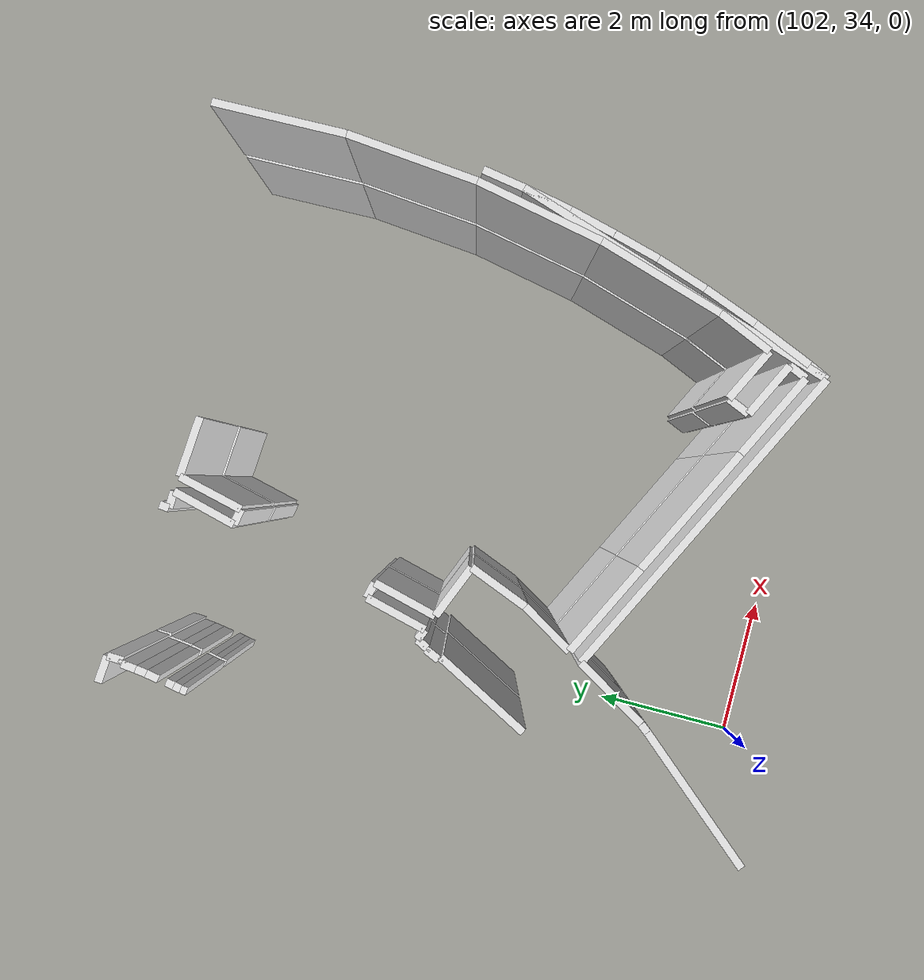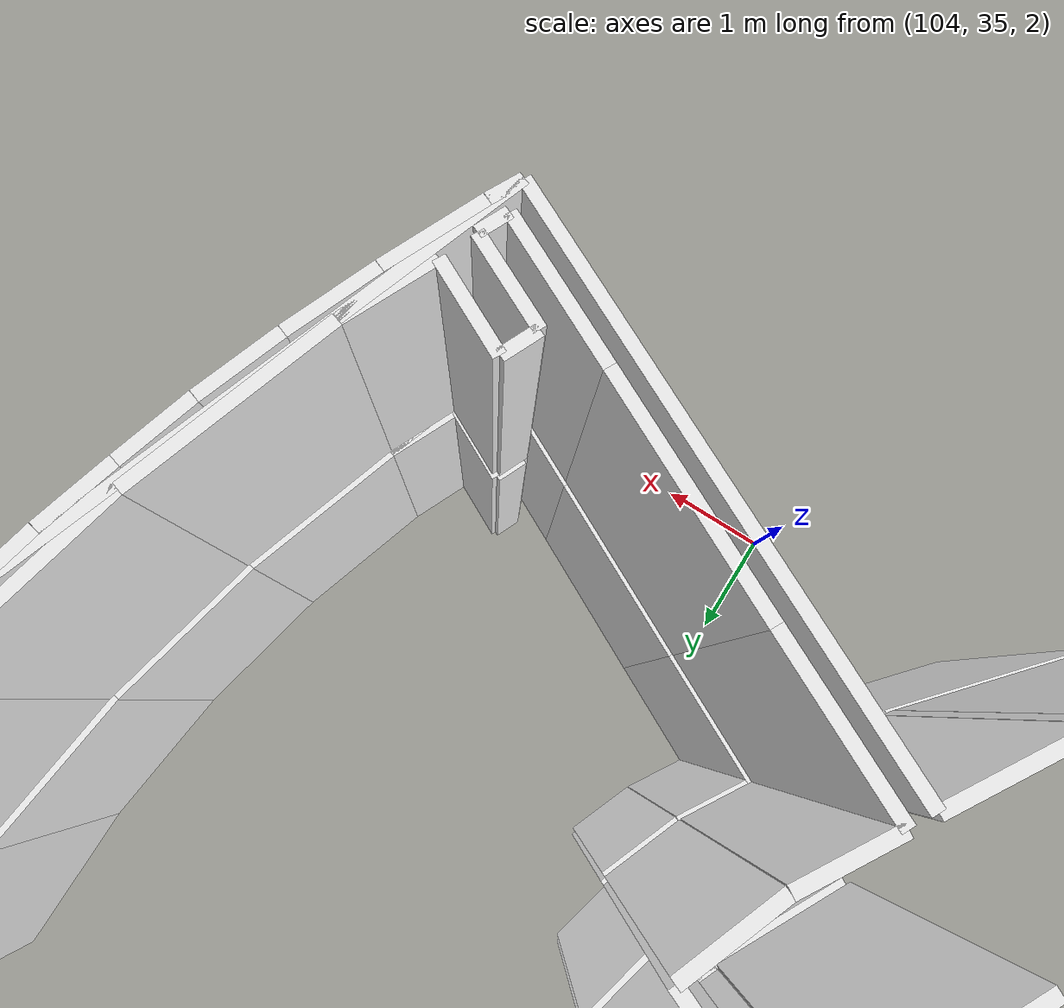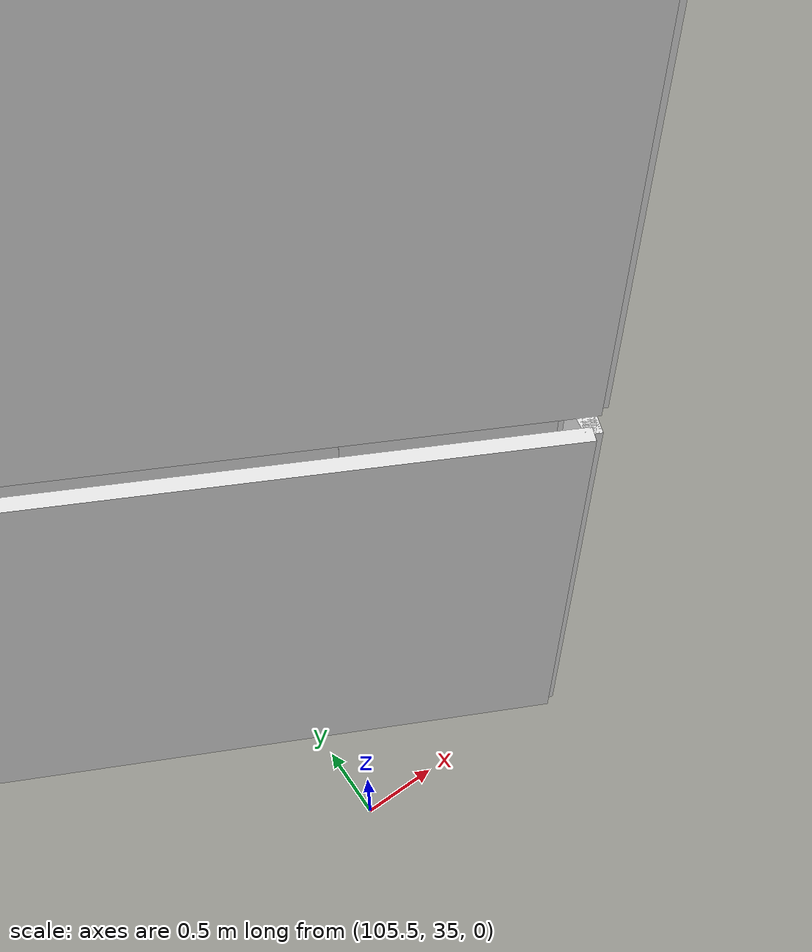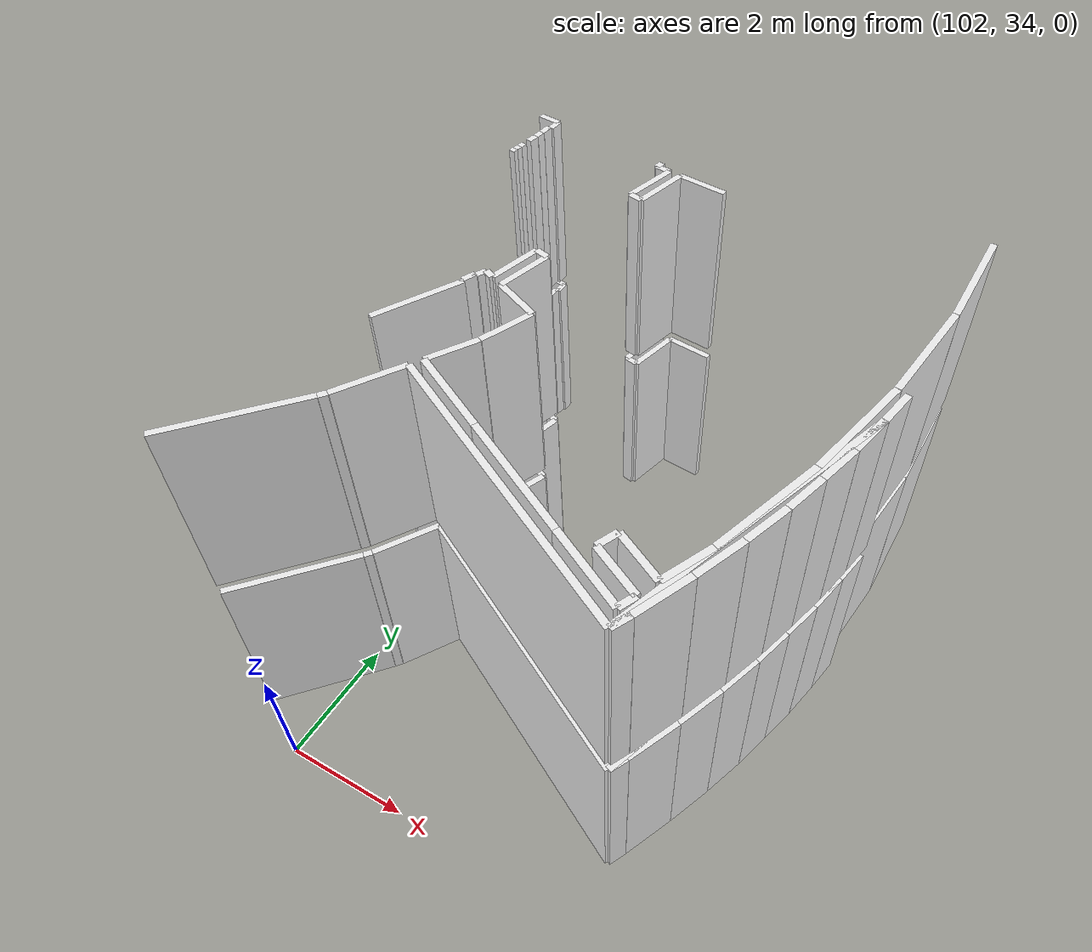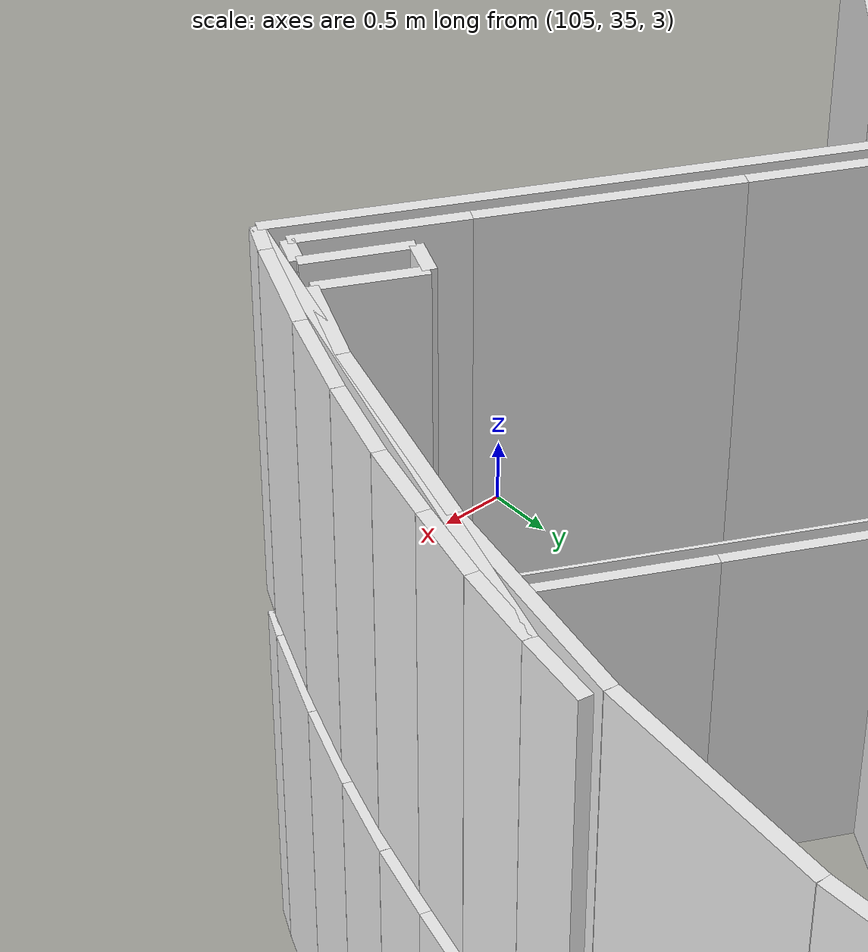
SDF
<sdf version="1.6">
 <world name="default">
  <model name="wall_101.5_41.6_0.0_link">
   <static>true</static>
   <pose>101.46499999999651 41.56999999983236 1.5 0 0 1.4464413329645371</pose>
   <link name="link">
    <visual name="visual">
     <geometry><box><size>0.08062257755085135 0.1 3</size></box></geometry>
     <material>
      <script><uri>file://media/materials/scripts/gazebo.material</uri><name>Gazebo/White</name></script>
     </material>
    </visual>
   </link>
  </model>
  <model name="wall_101.5_41.7_0.0_link">
   <static>true</static>
   <pose>101.47999999998137 41.65500000002794 1.5 0 0 1.3521273814687915</pose>
   <link name="link">
    <visual name="visual">
     <geometry><box><size>0.09219544488607884 0.1 3</size></box></geometry>
     <material>
      <script><uri>file://media/materials/scripts/gazebo.material</uri><name>Gazebo/White</name></script>
     </material>
    </visual>
   </link>
  </model>
  <model name="wall_101.5_41.8_0.0_link">
   <static>true</static>
   <pose>101.5 41.75 1.5 0 0 1.3734007660495133</pose>
   <link name="link">
    <visual name="visual">
     <geometry><box><size>0.10198038991021388 0.1 3</size></box></geometry>
     <material>
      <script><uri>file://media/materials/scripts/gazebo.material</uri><name>Gazebo/White</name></script>
     </material>
    </visual>
   </link>
  </model>
  <model name="wall_101.5_42.0_0.0_link">
   <static>true</static>
   <pose>101.53500000000349 41.97999999998137 1.5 0 0 1.3854483771506443</pose>
   <link name="link">
    <visual name="visual">
     <geometry><box><size>0.16278820610187839 0.1 3</size></box></geometry>
     <material>
      <script><uri>file://media/materials/scripts/gazebo.material</uri><name>Gazebo/White</name></script>
     </material>
    </visual>
   </link>
  </model>
  <model name="wall_101.6_42.1_0.0_link">
   <static>true</static>
   <pose>101.55999999999767 42.13000000012107 1.5 0 0 1.4288992721907328</pose>
   <link name="link">
    <visual name="visual">
     <geometry><box><size>0.1414213563690184 0.1 3</size></box></geometry>
     <material>
      <script><uri>file://media/materials/scripts/gazebo.material</uri><name>Gazebo/White</name></script>
     </material>
    </visual>
   </link>
  </model>
  <model name="wall_101.6_42.3_0.0_link">
   <static>true</static>
   <pose>101.5800000000163 42.29000000003725 1.5 0 0 1.4601391053370611</pose>
   <link name="link">
    <visual name="visual">
     <geometry><box><size>0.18110770246860486 0.1 3</size></box></geometry>
     <material>
      <script><uri>file://media/materials/scripts/gazebo.material</uri><name>Gazebo/White</name></script>
     </material>
    </visual>
   </link>
  </model>
  <model name="wall_101.6_42.4_0.0_link">
   <static>true</static>
   <pose>101.61000000001513 42.375 1.5 0 0 -0.24497865799089408</pose>
   <link name="link">
    <visual name="visual">
     <geometry><box><size>0.04123105618163657 0.1 3</size></box></geometry>
     <material>
      <script><uri>file://media/materials/scripts/gazebo.material</uri><name>Gazebo/White</name></script>
     </material>
    </visual>
   </link>
  </model>
  <model name="wall_101.6_42.5_0.0_link">
   <static>true</static>
   <pose>101.63500000000931 42.46999999997206 1.5 0 0 1.520837930956829</pose>
   <link name="link">
    <visual name="visual">
     <geometry><box><size>0.20024984366642476 0.1 3</size></box></geometry>
     <material>
      <script><uri>file://media/materials/scripts/gazebo.material</uri><name>Gazebo/White</name></script>
     </material>
    </visual>
   </link>
  </model>
  <model name="wall_103.6_42.4_0.0_link">
   <static>true</static>
   <pose>103.56500000000233 42.35000000009313 1.5 0 0 -1.6539375586833378</pose>
   <link name="link">
    <visual name="visual">
     <geometry><box><size>0.12041594590006904 0.1 3</size></box></geometry>
     <material>
      <script><uri>file://media/materials/scripts/gazebo.material</uri><name>Gazebo/White</name></script>
     </material>
    </visual>
   </link>
  </model>
  <model name="wall_103.7_42.3_0.0_link">
   <static>true</static>
   <pose>103.66500000000815 42.28499999991618 1.5 0 0 -0.0475831044226998</pose>
   <link name="link">
    <visual name="visual">
     <geometry><box><size>0.21023796044873502 0.1 3</size></box></geometry>
     <material>
      <script><uri>file://media/materials/scripts/gazebo.material</uri><name>Gazebo/White</name></script>
     </material>
    </visual>
   </link>
  </model>
  <model name="wall_103.7_41.9_0.0_link">
   <static>true</static>
   <pose>103.66500000000815 41.87999999988824 1.5 0 0 -1.8275046573099654</pose>
   <link name="link">
    <visual name="visual">
     <geometry><box><size>0.8271033790952481 0.1 3</size></box></geometry>
     <material>
      <script><uri>file://media/materials/scripts/gazebo.material</uri><name>Gazebo/White</name></script>
     </material>
    </visual>
   </link>
  </model>
  <model name="wall_103.0_39.3_0.0_link">
   <static>true</static>
   <pose>103.0 39.31000000005588 1.5 0 0 -1.821799013301479</pose>
   <link name="link">
    <visual name="visual">
     <geometry><box><size>0.8052328858089288 0.1 3</size></box></geometry>
     <material>
      <script><uri>file://media/materials/scripts/gazebo.material</uri><name>Gazebo/White</name></script>
     </material>
    </visual>
   </link>
  </model>
  <model name="wall_102.8_38.9_0.0_link">
   <static>true</static>
   <pose>102.8300000000163 38.949999999953434 1.5 0 0 2.736700867003636</pose>
   <link name="link">
    <visual name="visual">
     <geometry><box><size>0.15231546215213043 0.1 3</size></box></geometry>
     <material>
      <script><uri>file://media/materials/scripts/gazebo.material</uri><name>Gazebo/White</name></script>
     </material>
    </visual>
   </link>
  </model>
  <model name="wall_102.7_38.9_0.0_link">
   <static>true</static>
   <pose>102.72500000000582 38.90999999991618 1.5 0 0 -2.0344439354630874</pose>
   <link name="link">
    <visual name="visual">
     <geometry><box><size>0.15652475854472905 0.1 3</size></box></geometry>
     <material>
      <script><uri>file://media/materials/scripts/gazebo.material</uri><name>Gazebo/White</name></script>
     </material>
    </visual>
   </link>
  </model>
  <model name="wall_102.7_38.8_0.0_link">
   <static>true</static>
   <pose>102.67999999999302 38.84499999997206 1.5 0 0 2.677945035275761</pose>
   <link name="link">
    <visual name="visual">
     <geometry><box><size>0.022360679899947934 0.1 3</size></box></geometry>
     <material>
      <script><uri>file://media/materials/scripts/gazebo.material</uri><name>Gazebo/White</name></script>
     </material>
    </visual>
   </link>
  </model>
  <model name="wall_102.6_38.8_0.0_link">
   <static>true</static>
   <pose>102.63000000000466 38.76000000000931 1.5 0 0 -1.9890206558340546</pose>
   <link name="link">
    <visual name="visual">
     <geometry><box><size>0.19697715617209063 0.1 3</size></box></geometry>
     <material>
      <script><uri>file://media/materials/scripts/gazebo.material</uri><name>Gazebo/White</name></script>
     </material>
    </visual>
   </link>
  </model>
  <model name="wall_101.5_42.6_0.0_link">
   <static>true</static>
   <pose>101.47000000000116 42.58499999996275 1.5 0 0 3.053585279307601</pose>
   <link name="link">
    <visual name="visual">
     <geometry><box><size>0.3413209633659526 0.1 3</size></box></geometry>
     <material>
      <script><uri>file://media/materials/scripts/gazebo.material</uri><name>Gazebo/White</name></script>
     </material>
    </visual>
   </link>
  </model>
  <model name="wall_102.6_38.7_0.0_link">
   <static>true</static>
   <pose>102.60500000001048 38.65999999991618 1.5 0 0 -0.5880026044430701</pose>
   <link name="link">
    <visual name="visual">
     <geometry><box><size>0.03605551273978751 0.1 3</size></box></geometry>
     <material>
      <script><uri>file://media/materials/scripts/gazebo.material</uri><name>Gazebo/White</name></script>
     </material>
    </visual>
   </link>
  </model>
  <model name="wall_102.3_38.1_0.0_link">
   <static>true</static>
   <pose>102.30499999999302 38.05499999993481 1.5 0 0 -2.0576955586286396</pose>
   <link name="link">
    <visual name="visual">
     <geometry><box><size>1.3464768842697874 0.1 3</size></box></geometry>
     <material>
      <script><uri>file://media/materials/scripts/gazebo.material</uri><name>Gazebo/White</name></script>
     </material>
    </visual>
   </link>
  </model>
  <model name="wall_108.5_42.2_0.0_link">
   <static>true</static>
   <pose>108.46499999999651 42.169999999925494 1.5 0 0 -1.5529410816701883</pose>
   <link name="link">
    <visual name="visual">
     <geometry><box><size>1.6802678354943374 0.1 3</size></box></geometry>
     <material>
      <script><uri>file://media/materials/scripts/gazebo.material</uri><name>Gazebo/White</name></script>
     </material>
    </visual>
   </link>
  </model>
  <model name="wall_108.4_40.5_0.0_link">
   <static>true</static>
   <pose>108.39999999999418 40.48999999999069 1.5 0 0 -1.6657480331131271</pose>
   <link name="link">
    <visual name="visual">
     <geometry><box><size>1.6876018489427735 0.1 3</size></box></geometry>
     <material>
      <script><uri>file://media/materials/scripts/gazebo.material</uri><name>Gazebo/White</name></script>
     </material>
    </visual>
   </link>
  </model>
  <model name="wall_108.2_38.8_0.0_link">
   <static>true</static>
   <pose>108.15499999999884 38.829999999841675 1.5 0 0 -1.7693642190444387</pose>
   <link name="link">
    <visual name="visual">
     <geometry><box><size>1.672871782426382 0.1 3</size></box></geometry>
     <material>
      <script><uri>file://media/materials/scripts/gazebo.material</uri><name>Gazebo/White</name></script>
     </material>
    </visual>
   </link>
  </model>
  <model name="wall_107.7_37.2_0.0_link">
   <static>true</static>
   <pose>107.74499999999534 37.204999999841675 1.5 0 0 -1.8662371639558804</pose>
   <link name="link">
    <visual name="visual">
     <geometry><box><size>1.6829141390965354 0.1 3</size></box></geometry>
     <material>
      <script><uri>file://media/materials/scripts/gazebo.material</uri><name>Gazebo/White</name></script>
     </material>
    </visual>
   </link>
  </model>
  <model name="wall_107.4_36.1_0.0_link">
   <static>true</static>
   <pose>107.35000000000582 36.05499999993481 1.5 0 0 -1.980923667351811</pose>
   <link name="link">
    <visual name="visual">
     <geometry><box><size>0.7523961721831801 0.1 3</size></box></geometry>
     <material>
      <script><uri>file://media/materials/scripts/gazebo.material</uri><name>Gazebo/White</name></script>
     </material>
    </visual>
   </link>
  </model>
  <model name="wall_106.9_35.9_0.0_link">
   <static>true</static>
   <pose>106.86000000001513 35.87999999988824 1.5 0 0 2.677945044760186</pose>
   <link name="link">
    <visual name="visual">
     <geometry><box><size>0.760263112277041 0.1 3</size></box></geometry>
     <material>
      <script><uri>file://media/materials/scripts/gazebo.material</uri><name>Gazebo/White</name></script>
     </material>
    </visual>
   </link>
  </model>
  <model name="wall_106.5_35.9_0.0_link">
   <static>true</static>
   <pose>106.46000000002095 35.90999999991618 1.5 0 0 -1.9756881133308752</pose>
   <link name="link">
    <visual name="visual">
     <geometry><box><size>0.3046309240443975 0.1 3</size></box></geometry>
     <material>
      <script><uri>file://media/materials/scripts/gazebo.material</uri><name>Gazebo/White</name></script>
     </material>
    </visual>
   </link>
  </model>
  <model name="wall_106.7_35.6_0.0_link">
   <static>true</static>
   <pose>106.74500000002445 35.60000000009313 1.5 0 0 -0.4578337208438593</pose>
   <link name="link">
    <visual name="visual">
     <geometry><box><size>0.769220384481512 0.1 3</size></box></geometry>
     <material>
      <script><uri>file://media/materials/scripts/gazebo.material</uri><name>Gazebo/White</name></script>
     </material>
    </visual>
   </link>
  </model>
  <model name="wall_107.0_35.3_0.0_link">
   <static>true</static>
   <pose>107.04000000000815 35.31500000017695 1.5 0 0 -1.9809236674937056</pose>
   <link name="link">
    <visual name="visual">
     <geometry><box><size>0.25079872407653264 0.1 3</size></box></geometry>
     <material>
      <script><uri>file://media/materials/scripts/gazebo.material</uri><name>Gazebo/White</name></script>
     </material>
    </visual>
   </link>
  </model>
  <model name="wall_106.4_35.5_0.0_link">
   <static>true</static>
   <pose>106.44999999998254 35.47000000020489 1.5 0 0 2.6779450445674287</pose>
   <link name="link">
    <visual name="visual">
     <geometry><box><size>1.207476707881124 0.1 3</size></box></geometry>
     <material>
      <script><uri>file://media/materials/scripts/gazebo.material</uri><name>Gazebo/White</name></script>
     </material>
    </visual>
   </link>
  </model>
  <model name="wall_105.1_36.2_0.0_link">
   <static>true</static>
   <pose>105.08499999999185 36.15500000002794 1.5 0 0 2.675523741995435</pose>
   <link name="link">
    <visual name="visual">
     <geometry><box><size>1.8469975634080924 0.1 3</size></box></geometry>
     <material>
      <script><uri>file://media/materials/scripts/gazebo.material</uri><name>Gazebo/White</name></script>
     </material>
    </visual>
   </link>
  </model>
  <model name="wall_103.7_36.9_0.0_link">
   <static>true</static>
   <pose>103.6700000000128 36.86499999999069 1.5 0 0 2.6779450443719415</pose>
   <link name="link">
    <visual name="visual">
     <geometry><box><size>1.3192801068602384 0.1 3</size></box></geometry>
     <material>
      <script><uri>file://media/materials/scripts/gazebo.material</uri><name>Gazebo/White</name></script>
     </material>
    </visual>
   </link>
  </model>
  <model name="wall_103.3_37.5_0.0_link">
   <static>true</static>
   <pose>103.27499999999418 37.485000000102445 1.5 0 0 1.0303768265111433</pose>
   <link name="link">
    <visual name="visual">
     <geometry><box><size>0.7580237462272686 0.1 3</size></box></geometry>
     <material>
      <script><uri>file://media/materials/scripts/gazebo.material</uri><name>Gazebo/White</name></script>
     </material>
    </visual>
   </link>
  </model>
  <model name="wall_103.6_38.2_0.0_link">
   <static>true</static>
   <pose>103.61999999999534 38.18500000005588 1.5 0 0 1.1902899496290074</pose>
   <link name="link">
    <visual name="visual">
     <geometry><box><size>0.8077747210874698 0.1 3</size></box></geometry>
     <material>
      <script><uri>file://media/materials/scripts/gazebo.material</uri><name>Gazebo/White</name></script>
     </material>
    </visual>
   </link>
  </model>
  <model name="wall_103.4_38.7_0.0_link">
   <static>true</static>
   <pose>103.43000000002212 38.699999999953434 1.5 0 0 2.750985610146119</pose>
   <link name="link">
    <visual name="visual">
     <geometry><box><size>0.7353910523495384 0.1 3</size></box></geometry>
     <material>
      <script><uri>file://media/materials/scripts/gazebo.material</uri><name>Gazebo/White</name></script>
     </material>
    </visual>
   </link>
  </model>
  <model name="wall_103.2_39.2_0.0_link">
   <static>true</static>
   <pose>103.19500000000698 39.24499999987893 1.5 0 0 1.3171222307161075</pose>
   <link name="link">
    <visual name="visual">
     <geometry><box><size>0.8367795409036232 0.1 3</size></box></geometry>
     <material>
      <script><uri>file://media/materials/scripts/gazebo.material</uri><name>Gazebo/White</name></script>
     </material>
    </visual>
   </link>
  </model>
  <model name="wall_103.2_39.7_0.0_link">
   <static>true</static>
   <pose>103.19999999998254 39.675000000046566 1.5 0 0 2.896613989161817</pose>
   <link name="link">
    <visual name="visual">
     <geometry><box><size>0.20615528135994066 0.1 3</size></box></geometry>
     <material>
      <script><uri>file://media/materials/scripts/gazebo.material</uri><name>Gazebo/White</name></script>
     </material>
    </visual>
   </link>
  </model>
  <model name="wall_103.7_41.5_0.0_link">
   <static>true</static>
   <pose>103.66000000000349 41.45999999996275 1.5 0 0 -0.19739556001778746</pose>
   <link name="link">
    <visual name="visual">
     <geometry><box><size>0.20396078056243275 0.1 3</size></box></geometry>
     <material>
      <script><uri>file://media/materials/scripts/gazebo.material</uri><name>Gazebo/White</name></script>
     </material>
    </visual>
   </link>
  </model>
  <model name="wall_103.9_41.8_0.0_link">
   <static>true</static>
   <pose>103.86000000001513 41.8499999998603 1.5 0 0 1.3315647267707733</pose>
   <link name="link">
    <visual name="visual">
     <geometry><box><size>0.8440379136802625 0.1 3</size></box></geometry>
     <material>
      <script><uri>file://media/materials/scripts/gazebo.material</uri><name>Gazebo/White</name></script>
     </material>
    </visual>
   </link>
  </model>
  <model name="wall_104.3_42.2_0.0_link">
   <static>true</static>
   <pose>104.33999999999651 42.22999999998137 1.5 0 0 -0.07878396045834442</pose>
   <link name="link">
    <visual name="visual">
     <geometry><box><size>0.762364742020843 0.1 3</size></box></geometry>
     <material>
      <script><uri>file://media/materials/scripts/gazebo.material</uri><name>Gazebo/White</name></script>
     </material>
    </visual>
   </link>
  </model>
  <model name="wall_101.7_35.2_0.0_link">
   <static>true</static>
   <pose>101.7049999999872 35.24500000011176 1.5 0 0 0.8562015958949653</pose>
   <link name="link">
    <visual name="visual">
     <geometry><box><size>1.999049774097403 0.1 3</size></box></geometry>
     <material>
      <script><uri>file://media/materials/scripts/gazebo.material</uri><name>Gazebo/White</name></script>
     </material>
    </visual>
   </link>
  </model>
  <model name="wall_102.4_36.1_0.0_link">
   <static>true</static>
   <pose>102.39999999999418 36.050000000046566 1.5 0 0 0.8960553849262687</pose>
   <link name="link">
    <visual name="visual">
     <geometry><box><size>0.1280624848315624 0.1 3</size></box></geometry>
     <material>
      <script><uri>file://media/materials/scripts/gazebo.material</uri><name>Gazebo/White</name></script>
     </material>
    </visual>
   </link>
  </model>
  <model name="wall_102.7_36.5_0.0_link">
   <static>true</static>
   <pose>102.70999999999185 36.545000000158325 1.5 0 0 1.0254345274736425</pose>
   <link name="link">
    <visual name="visual">
     <geometry><box><size>1.0410091259011396 0.1 3</size></box></geometry>
     <material>
      <script><uri>file://media/materials/scripts/gazebo.material</uri><name>Gazebo/White</name></script>
     </material>
    </visual>
   </link>
  </model>
  <model name="wall_105.0_36.0_0.0_link">
   <static>true</static>
   <pose>105.00999999998021 35.97000000020489 1.5 0 0 -0.46561611040271994</pose>
   <link name="link">
    <visual name="visual">
     <geometry><box><size>4.543698933702924 0.1 3</size></box></geometry>
     <material>
      <script><uri>file://media/materials/scripts/gazebo.material</uri><name>Gazebo/White</name></script>
     </material>
    </visual>
   </link>
  </model>
  <model name="wall_107.1_35.1_0.0_link">
   <static>true</static>
   <pose>107.09999999997672 35.075000000186265 1.5 0 0 1.1232763516528652</pose>
   <link name="link">
    <visual name="visual">
     <geometry><box><size>0.2773084924752259 0.1 3</size></box></geometry>
     <material>
      <script><uri>file://media/materials/scripts/gazebo.material</uri><name>Gazebo/White</name></script>
     </material>
    </visual>
   </link>
  </model>
  <model name="wall_107.3_35.6_0.0_link">
   <static>true</static>
   <pose>107.31999999997788 35.580000000074506 1.5 0 0 1.1722738810154851</pose>
   <link name="link">
    <visual name="visual">
     <geometry><box><size>0.8246211249202411 0.1 3</size></box></geometry>
     <material>
      <script><uri>file://media/materials/scripts/gazebo.material</uri><name>Gazebo/White</name></script>
     </material>
    </visual>
   </link>
  </model>
  <model name="wall_107.6_36.3_0.0_link">
   <static>true</static>
   <pose>107.60999999998603 36.30499999993481 1.5 0 0 1.2104383562315624</pose>
   <link name="link">
    <visual name="visual">
     <geometry><box><size>0.7373601561840247 0.1 3</size></box></geometry>
     <material>
      <script><uri>file://media/materials/scripts/gazebo.material</uri><name>Gazebo/White</name></script>
     </material>
    </visual>
   </link>
  </model>
  <model name="wall_107.8_37.0_0.0_link">
   <static>true</static>
   <pose>107.84500000000116 36.96999999997206 1.5 0 0 1.2537405736165406</pose>
   <link name="link">
    <visual name="visual">
     <geometry><box><size>0.6735725648923759 0.1 3</size></box></geometry>
     <material>
      <script><uri>file://media/materials/scripts/gazebo.material</uri><name>Gazebo/White</name></script>
     </material>
    </visual>
   </link>
  </model>
  <model name="wall_108.0_37.6_0.0_link">
   <static>true</static>
   <pose>108.02999999999884 37.58499999996275 1.5 0 0 1.3059789968657436</pose>
   <link name="link">
    <visual name="visual">
     <geometry><box><size>0.6113100684725965 0.1 3</size></box></geometry>
     <material>
      <script><uri>file://media/materials/scripts/gazebo.material</uri><name>Gazebo/White</name></script>
     </material>
    </visual>
   </link>
  </model>
  <model name="wall_108.2_38.2_0.0_link">
   <static>true</static>
   <pose>108.18499999999767 38.175000000046566 1.5 0 0 1.3218336210932762</pose>
   <link name="link">
    <visual name="visual">
     <geometry><box><size>0.6087692505216008 0.1 3</size></box></geometry>
     <material>
      <script><uri>file://media/materials/scripts/gazebo.material</uri><name>Gazebo/White</name></script>
     </material>
    </visual>
   </link>
  </model>
  <model name="wall_108.3_38.8_0.0_link">
   <static>true</static>
   <pose>108.32000000000698 38.7750000001397 1.5 0 0 1.3765553305803602</pose>
   <link name="link">
    <visual name="visual">
     <geometry><box><size>0.6216912415659501 0.1 3</size></box></geometry>
     <material>
      <script><uri>file://media/materials/scripts/gazebo.material</uri><name>Gazebo/White</name></script>
     </material>
    </visual>
   </link>
  </model>
  <model name="wall_108.4_39.4_0.0_link">
   <static>true</static>
   <pose>108.42499999998836 39.35000000009313 1.5 0 0 1.4056476494501888</pose>
   <link name="link">
    <visual name="visual">
     <geometry><box><size>0.547448627758227 0.1 3</size></box></geometry>
     <material>
      <script><uri>file://media/materials/scripts/gazebo.material</uri><name>Gazebo/White</name></script>
     </material>
    </visual>
   </link>
  </model>
  <model name="wall_107.7_37.0_0.0_link">
   <static>true</static>
   <pose>107.70999999999185 37.015000000130385 1.5 0 0 -1.8845353992981464</pose>
   <link name="link">
    <visual name="visual">
     <geometry><box><size>4.341946567974497 0.1 3</size></box></geometry>
     <material>
      <script><uri>file://media/materials/scripts/gazebo.material</uri><name>Gazebo/White</name></script>
     </material>
    </visual>
   </link>
  </model>
  <model name="wall_101.5_41.6_3.2_link">
   <static>true</static>
   <pose>101.46499999999651 41.56999999983236 4.7 0 0 1.4464413329645371</pose>
   <link name="link">
    <visual name="visual">
     <geometry><box><size>0.08062257755085135 0.1 3</size></box></geometry>
     <material>
      <script><uri>file://media/materials/scripts/gazebo.material</uri><name>Gazebo/White</name></script>
     </material>
    </visual>
   </link>
  </model>
  <model name="wall_101.5_41.7_3.2_link">
   <static>true</static>
   <pose>101.47999999998137 41.65500000002794 4.7 0 0 1.3521273814687915</pose>
   <link name="link">
    <visual name="visual">
     <geometry><box><size>0.09219544488607884 0.1 3</size></box></geometry>
     <material>
      <script><uri>file://media/materials/scripts/gazebo.material</uri><name>Gazebo/White</name></script>
     </material>
    </visual>
   </link>
  </model>
  <model name="wall_101.5_41.8_3.2_link">
   <static>true</static>
   <pose>101.5 41.75 4.7 0 0 1.3734007660495133</pose>
   <link name="link">
    <visual name="visual">
     <geometry><box><size>0.10198038991021388 0.1 3</size></box></geometry>
     <material>
      <script><uri>file://media/materials/scripts/gazebo.material</uri><name>Gazebo/White</name></script>
     </material>
    </visual>
   </link>
  </model>
  <model name="wall_101.5_42.0_3.2_link">
   <static>true</static>
   <pose>101.53500000000349 41.97999999998137 4.7 0 0 1.3854483771506443</pose>
   <link name="link">
    <visual name="visual">
     <geometry><box><size>0.16278820610187839 0.1 3</size></box></geometry>
     <material>
      <script><uri>file://media/materials/scripts/gazebo.material</uri><name>Gazebo/White</name></script>
     </material>
    </visual>
   </link>
  </model>
  <model name="wall_101.6_42.1_3.2_link">
   <static>true</static>
   <pose>101.55999999999767 42.13000000012107 4.7 0 0 1.4288992721907328</pose>
   <link name="link">
    <visual name="visual">
     <geometry><box><size>0.1414213563690184 0.1 3</size></box></geometry>
     <material>
      <script><uri>file://media/materials/scripts/gazebo.material</uri><name>Gazebo/White</name></script>
     </material>
    </visual>
   </link>
  </model>
  <model name="wall_101.6_42.3_3.2_link">
   <static>true</static>
   <pose>101.5800000000163 42.29000000003725 4.7 0 0 1.4601391053370611</pose>
   <link name="link">
    <visual name="visual">
     <geometry><box><size>0.18110770246860486 0.1 3</size></box></geometry>
     <material>
      <script><uri>file://media/materials/scripts/gazebo.material</uri><name>Gazebo/White</name></script>
     </material>
    </visual>
   </link>
  </model>
  <model name="wall_101.6_42.4_3.2_link">
   <static>true</static>
   <pose>101.61000000001513 42.375 4.7 0 0 -0.24497865799089408</pose>
   <link name="link">
    <visual name="visual">
     <geometry><box><size>0.04123105618163657 0.1 3</size></box></geometry>
     <material>
      <script><uri>file://media/materials/scripts/gazebo.material</uri><name>Gazebo/White</name></script>
     </material>
    </visual>
   </link>
  </model>
  <model name="wall_101.6_42.5_3.2_link">
   <static>true</static>
   <pose>101.63500000000931 42.46999999997206 4.7 0 0 1.520837930956829</pose>
   <link name="link">
    <visual name="visual">
     <geometry><box><size>0.20024984366642476 0.1 3</size></box></geometry>
     <material>
      <script><uri>file://media/materials/scripts/gazebo.material</uri><name>Gazebo/White</name></script>
     </material>
    </visual>
   </link>
  </model>
  <model name="wall_103.6_42.4_3.2_link">
   <static>true</static>
   <pose>103.56500000000233 42.35000000009313 4.7 0 0 -1.6539375586833378</pose>
   <link name="link">
    <visual name="visual">
     <geometry><box><size>0.12041594590006904 0.1 3</size></box></geometry>
     <material>
      <script><uri>file://media/materials/scripts/gazebo.material</uri><name>Gazebo/White</name></script>
     </material>
    </visual>
   </link>
  </model>
  <model name="wall_103.7_42.3_3.2_link">
   <static>true</static>
   <pose>103.66500000000815 42.28499999991618 4.7 0 0 -0.0475831044226998</pose>
   <link name="link">
    <visual name="visual">
     <geometry><box><size>0.21023796044873502 0.1 3</size></box></geometry>
     <material>
      <script><uri>file://media/materials/scripts/gazebo.material</uri><name>Gazebo/White</name></script>
     </material>
    </visual>
   </link>
  </model>
  <model name="wall_103.7_41.9_3.2_link">
   <static>true</static>
   <pose>103.66500000000815 41.87999999988824 4.7 0 0 -1.8275046573099654</pose>
   <link name="link">
    <visual name="visual">
     <geometry><box><size>0.8271033790952481 0.1 3</size></box></geometry>
     <material>
      <script><uri>file://media/materials/scripts/gazebo.material</uri><name>Gazebo/White</name></script>
     </material>
    </visual>
   </link>
  </model>
  <model name="wall_103.0_39.3_3.2_link">
   <static>true</static>
   <pose>103.0 39.31000000005588 4.7 0 0 -1.821799013301479</pose>
   <link name="link">
    <visual name="visual">
     <geometry><box><size>0.8052328858089288 0.1 3</size></box></geometry>
     <material>
      <script><uri>file://media/materials/scripts/gazebo.material</uri><name>Gazebo/White</name></script>
     </material>
    </visual>
   </link>
  </model>
  <model name="wall_102.8_38.9_3.2_link">
   <static>true</static>
   <pose>102.8300000000163 38.949999999953434 4.7 0 0 2.736700867003636</pose>
   <link name="link">
    <visual name="visual">
     <geometry><box><size>0.15231546215213043 0.1 3</size></box></geometry>
     <material>
      <script><uri>file://media/materials/scripts/gazebo.material</uri><name>Gazebo/White</name></script>
     </material>
    </visual>
   </link>
  </model>
  <model name="wall_102.7_38.9_3.2_link">
   <static>true</static>
   <pose>102.72500000000582 38.90999999991618 4.7 0 0 -2.0344439354630874</pose>
   <link name="link">
    <visual name="visual">
     <geometry><box><size>0.15652475854472905 0.1 3</size></box></geometry>
     <material>
      <script><uri>file://media/materials/scripts/gazebo.material</uri><name>Gazebo/White</name></script>
     </material>
    </visual>
   </link>
  </model>
  <model name="wall_102.7_38.8_3.2_link">
   <static>true</static>
   <pose>102.67999999999302 38.84499999997206 4.7 0 0 2.677945035275761</pose>
   <link name="link">
    <visual name="visual">
     <geometry><box><size>0.022360679899947934 0.1 3</size></box></geometry>
     <material>
      <script><uri>file://media/materials/scripts/gazebo.material</uri><name>Gazebo/White</name></script>
     </material>
    </visual>
   </link>
  </model>
  <model name="wall_102.6_38.8_3.2_link">
   <static>true</static>
   <pose>102.63000000000466 38.76000000000931 4.7 0 0 -1.9890206558340546</pose>
   <link name="link">
    <visual name="visual">
     <geometry><box><size>0.19697715617209063 0.1 3</size></box></geometry>
     <material>
      <script><uri>file://media/materials/scripts/gazebo.material</uri><name>Gazebo/White</name></script>
     </material>
    </visual>
   </link>
  </model>
  <model name="wall_101.5_42.6_3.2_link">
   <static>true</static>
   <pose>101.47000000000116 42.58499999996275 4.7 0 0 3.053585279307601</pose>
   <link name="link">
    <visual name="visual">
     <geometry><box><size>0.3413209633659526 0.1 3</size></box></geometry>
     <material>
      <script><uri>file://media/materials/scripts/gazebo.material</uri><name>Gazebo/White</name></script>
     </material>
    </visual>
   </link>
  </model>
  <model name="wall_102.6_38.7_3.2_link">
   <static>true</static>
   <pose>102.60500000001048 38.65999999991618 4.7 0 0 -0.5880026044430701</pose>
   <link name="link">
    <visual name="visual">
     <geometry><box><size>0.03605551273978751 0.1 3</size></box></geometry>
     <material>
      <script><uri>file://media/materials/scripts/gazebo.material</uri><name>Gazebo/White</name></script>
     </material>
    </visual>
   </link>
  </model>
  <model name="wall_102.3_38.1_3.2_link">
   <static>true</static>
   <pose>102.30499999999302 38.05499999993481 4.7 0 0 -2.0576955586286396</pose>
   <link name="link">
    <visual name="visual">
     <geometry><box><size>1.3464768842697874 0.1 3</size></box></geometry>
     <material>
      <script><uri>file://media/materials/scripts/gazebo.material</uri><name>Gazebo/White</name></script>
     </material>
    </visual>
   </link>
  </model>
  <model name="wall_108.5_42.2_3.2_link">
   <static>true</static>
   <pose>108.46499999999651 42.169999999925494 4.7 0 0 -1.5529410816701883</pose>
   <link name="link">
    <visual name="visual">
     <geometry><box><size>1.6802678354943374 0.1 3</size></box></geometry>
     <material>
      <script><uri>file://media/materials/scripts/gazebo.material</uri><name>Gazebo/White</name></script>
     </material>
    </visual>
   </link>
  </model>
  <model name="wall_108.4_40.5_3.2_link">
   <static>true</static>
   <pose>108.39999999999418 40.48999999999069 4.7 0 0 -1.6657480331131271</pose>
   <link name="link">
    <visual name="visual">
     <geometry><box><size>1.6876018489427735 0.1 3</size></box></geometry>
     <material>
      <script><uri>file://media/materials/scripts/gazebo.material</uri><name>Gazebo/White</name></script>
     </material>
    </visual>
   </link>
  </model>
  <model name="wall_108.2_38.8_3.2_link">
   <static>true</static>
   <pose>108.15499999999884 38.829999999841675 4.7 0 0 -1.7693642190444387</pose>
   <link name="link">
    <visual name="visual">
     <geometry><box><size>1.672871782426382 0.1 3</size></box></geometry>
     <material>
      <script><uri>file://media/materials/scripts/gazebo.material</uri><name>Gazebo/White</name></script>
     </material>
    </visual>
   </link>
  </model>
  <model name="wall_107.7_37.2_3.2_link">
   <static>true</static>
   <pose>107.74499999999534 37.204999999841675 4.7 0 0 -1.8662371639558804</pose>
   <link name="link">
    <visual name="visual">
     <geometry><box><size>1.6829141390965354 0.1 3</size></box></geometry>
     <material>
      <script><uri>file://media/materials/scripts/gazebo.material</uri><name>Gazebo/White</name></script>
     </material>
    </visual>
   </link>
  </model>
  <model name="wall_107.4_36.1_3.2_link">
   <static>true</static>
   <pose>107.35000000000582 36.05499999993481 4.7 0 0 -1.980923667351811</pose>
   <link name="link">
    <visual name="visual">
     <geometry><box><size>0.7523961721831801 0.1 3</size></box></geometry>
     <material>
      <script><uri>file://media/materials/scripts/gazebo.material</uri><name>Gazebo/White</name></script>
     </material>
    </visual>
   </link>
  </model>
  <model name="wall_106.9_35.9_3.2_link">
   <static>true</static>
   <pose>106.86000000001513 35.87999999988824 4.7 0 0 2.677945044760186</pose>
   <link name="link">
    <visual name="visual">
     <geometry><box><size>0.760263112277041 0.1 3</size></box></geometry>
     <material>
      <script><uri>file://media/materials/scripts/gazebo.material</uri><name>Gazebo/White</name></script>
     </material>
    </visual>
   </link>
  </model>
  <model name="wall_106.5_35.9_3.2_link">
   <static>true</static>
   <pose>106.46000000002095 35.90999999991618 4.7 0 0 -1.9756881133308752</pose>
   <link name="link">
    <visual name="visual">
     <geometry><box><size>0.3046309240443975 0.1 3</size></box></geometry>
     <material>
      <script><uri>file://media/materials/scripts/gazebo.material</uri><name>Gazebo/White</name></script>
     </material>
    </visual>
   </link>
  </model>
  <model name="wall_106.7_35.6_3.2_link">
   <static>true</static>
   <pose>106.74500000002445 35.60000000009313 4.7 0 0 -0.4578337208438593</pose>
   <link name="link">
    <visual name="visual">
     <geometry><box><size>0.769220384481512 0.1 3</size></box></geometry>
     <material>
      <script><uri>file://media/materials/scripts/gazebo.material</uri><name>Gazebo/White</name></script>
     </material>
    </visual>
   </link>
  </model>
  <model name="wall_107.0_35.3_3.2_link">
   <static>true</static>
   <pose>107.04000000000815 35.31500000017695 4.7 0 0 -1.9809236674937056</pose>
   <link name="link">
    <visual name="visual">
     <geometry><box><size>0.25079872407653264 0.1 3</size></box></geometry>
     <material>
      <script><uri>file://media/materials/scripts/gazebo.material</uri><name>Gazebo/White</name></script>
     </material>
    </visual>
   </link>
  </model>
  <model name="wall_106.4_35.5_3.2_link">
   <static>true</static>
   <pose>106.44999999998254 35.47000000020489 4.7 0 0 2.6779450445674287</pose>
   <link name="link">
    <visual name="visual">
     <geometry><box><size>1.207476707881124 0.1 3</size></box></geometry>
     <material>
      <script><uri>file://media/materials/scripts/gazebo.material</uri><name>Gazebo/White</name></script>
     </material>
    </visual>
   </link>
  </model>
  <model name="wall_105.1_36.2_3.2_link">
   <static>true</static>
   <pose>105.08499999999185 36.15500000002794 4.7 0 0 2.675523741995435</pose>
   <link name="link">
    <visual name="visual">
     <geometry><box><size>1.8469975634080924 0.1 3</size></box></geometry>
     <material>
      <script><uri>file://media/materials/scripts/gazebo.material</uri><name>Gazebo/White</name></script>
     </material>
    </visual>
   </link>
  </model>
  <model name="wall_103.7_36.9_3.2_link">
   <static>true</static>
   <pose>103.6700000000128 36.86499999999069 4.7 0 0 2.6779450443719415</pose>
   <link name="link">
    <visual name="visual">
     <geometry><box><size>1.3192801068602384 0.1 3</size></box></geometry>
     <material>
      <script><uri>file://media/materials/scripts/gazebo.material</uri><name>Gazebo/White</name></script>
     </material>
    </visual>
   </link>
  </model>
  <model name="wall_103.3_37.5_3.2_link">
   <static>true</static>
   <pose>103.27499999999418 37.485000000102445 4.7 0 0 1.0303768265111433</pose>
   <link name="link">
    <visual name="visual">
     <geometry><box><size>0.7580237462272686 0.1 3</size></box></geometry>
     <material>
      <script><uri>file://media/materials/scripts/gazebo.material</uri><name>Gazebo/White</name></script>
     </material>
    </visual>
   </link>
  </model>
  <model name="wall_103.6_38.2_3.2_link">
   <static>true</static>
   <pose>103.61999999999534 38.18500000005588 4.7 0 0 1.1902899496290074</pose>
   <link name="link">
    <visual name="visual">
     <geometry><box><size>0.8077747210874698 0.1 3</size></box></geometry>
     <material>
      <script><uri>file://media/materials/scripts/gazebo.material</uri><name>Gazebo/White</name></script>
     </material>
    </visual>
   </link>
  </model>
  <model name="wall_103.4_38.7_3.2_link">
   <static>true</static>
   <pose>103.43000000002212 38.699999999953434 4.7 0 0 2.750985610146119</pose>
   <link name="link">
    <visual name="visual">
     <geometry><box><size>0.7353910523495384 0.1 3</size></box></geometry>
     <material>
      <script><uri>file://media/materials/scripts/gazebo.material</uri><name>Gazebo/White</name></script>
     </material>
    </visual>
   </link>
  </model>
  <model name="wall_103.2_39.2_3.2_link">
   <static>true</static>
   <pose>103.19500000000698 39.24499999987893 4.7 0 0 1.3171222307161075</pose>
   <link name="link">
    <visual name="visual">
     <geometry><box><size>0.8367795409036232 0.1 3</size></box></geometry>
     <material>
      <script><uri>file://media/materials/scripts/gazebo.material</uri><name>Gazebo/White</name></script>
     </material>
    </visual>
   </link>
  </model>
  <model name="wall_103.2_39.7_3.2_link">
   <static>true</static>
   <pose>103.19999999998254 39.675000000046566 4.7 0 0 2.896613989161817</pose>
   <link name="link">
    <visual name="visual">
     <geometry><box><size>0.20615528135994066 0.1 3</size></box></geometry>
     <material>
      <script><uri>file://media/materials/scripts/gazebo.material</uri><name>Gazebo/White</name></script>
     </material>
    </visual>
   </link>
  </model>
  <model name="wall_103.7_41.5_3.2_link">
   <static>true</static>
   <pose>103.66000000000349 41.45999999996275 4.7 0 0 -0.19739556001778746</pose>
   <link name="link">
    <visual name="visual">
     <geometry><box><size>0.20396078056243275 0.1 3</size></box></geometry>
     <material>
      <script><uri>file://media/materials/scripts/gazebo.material</uri><name>Gazebo/White</name></script>
     </material>
    </visual>
   </link>
  </model>
  <model name="wall_103.9_41.8_3.2_link">
   <static>true</static>
   <pose>103.86000000001513 41.8499999998603 4.7 0 0 1.3315647267707733</pose>
   <link name="link">
    <visual name="visual">
     <geometry><box><size>0.8440379136802625 0.1 3</size></box></geometry>
     <material>
      <script><uri>file://media/materials/scripts/gazebo.material</uri><name>Gazebo/White</name></script>
     </material>
    </visual>
   </link>
  </model>
  <model name="wall_104.3_42.2_3.2_link">
   <static>true</static>
   <pose>104.33999999999651 42.22999999998137 4.7 0 0 -0.07878396045834442</pose>
   <link name="link">
    <visual name="visual">
     <geometry><box><size>0.762364742020843 0.1 3</size></box></geometry>
     <material>
      <script><uri>file://media/materials/scripts/gazebo.material</uri><name>Gazebo/White</name></script>
     </material>
    </visual>
   </link>
  </model>
  <model name="wall_101.7_35.2_3.2_link">
   <static>true</static>
   <pose>101.7049999999872 35.24500000011176 4.7 0 0 0.8562015958949653</pose>
   <link name="link">
    <visual name="visual">
     <geometry><box><size>1.999049774097403 0.1 3</size></box></geometry>
     <material>
      <script><uri>file://media/materials/scripts/gazebo.material</uri><name>Gazebo/White</name></script>
     </material>
    </visual>
   </link>
  </model>
  <model name="wall_102.4_36.1_3.2_link">
   <static>true</static>
   <pose>102.39999999999418 36.050000000046566 4.7 0 0 0.8960553849262687</pose>
   <link name="link">
    <visual name="visual">
     <geometry><box><size>0.1280624848315624 0.1 3</size></box></geometry>
     <material>
      <script><uri>file://media/materials/scripts/gazebo.material</uri><name>Gazebo/White</name></script>
     </material>
    </visual>
   </link>
  </model>
  <model name="wall_102.7_36.5_3.2_link">
   <static>true</static>
   <pose>102.70999999999185 36.545000000158325 4.7 0 0 1.0254345274736425</pose>
   <link name="link">
    <visual name="visual">
     <geometry><box><size>1.0410091259011396 0.1 3</size></box></geometry>
     <material>
      <script><uri>file://media/materials/scripts/gazebo.material</uri><name>Gazebo/White</name></script>
     </material>
    </visual>
   </link>
  </model>
  <model name="wall_105.0_36.0_3.2_link">
   <static>true</static>
   <pose>105.00999999998021 35.97000000020489 4.7 0 0 -0.46561611040271994</pose>
   <link name="link">
    <visual name="visual">
     <geometry><box><size>4.543698933702924 0.1 3</size></box></geometry>
     <material>
      <script><uri>file://media/materials/scripts/gazebo.material</uri><name>Gazebo/White</name></script>
     </material>
    </visual>
   </link>
  </model>
  <model name="wall_107.1_35.1_3.2_link">
   <static>true</static>
   <pose>107.09999999997672 35.075000000186265 4.7 0 0 1.1232763516528652</pose>
   <link name="link">
    <visual name="visual">
     <geometry><box><size>0.2773084924752259 0.1 3</size></box></geometry>
     <material>
      <script><uri>file://media/materials/scripts/gazebo.material</uri><name>Gazebo/White</name></script>
     </material>
    </visual>
   </link>
  </model>
  <model name="wall_107.3_35.6_3.2_link">
   <static>true</static>
   <pose>107.31999999997788 35.580000000074506 4.7 0 0 1.1722738810154851</pose>
   <link name="link">
    <visual name="visual">
     <geometry><box><size>0.8246211249202411 0.1 3</size></box></geometry>
     <material>
      <script><uri>file://media/materials/scripts/gazebo.material</uri><name>Gazebo/White</name></script>
     </material>
    </visual>
   </link>
  </model>
  <model name="wall_107.6_36.3_3.2_link">
   <static>true</static>
   <pose>107.60999999998603 36.30499999993481 4.7 0 0 1.2104383562315624</pose>
   <link name="link">
    <visual name="visual">
     <geometry><box><size>0.7373601561840247 0.1 3</size></box></geometry>
     <material>
      <script><uri>file://media/materials/scripts/gazebo.material</uri><name>Gazebo/White</name></script>
     </material>
    </visual>
   </link>
  </model>
  <model name="wall_107.8_37.0_3.2_link">
   <static>true</static>
   <pose>107.84500000000116 36.96999999997206 4.7 0 0 1.2537405736165406</pose>
   <link name="link">
    <visual name="visual">
     <geometry><box><size>0.6735725648923759 0.1 3</size></box></geometry>
     <material>
      <script><uri>file://media/materials/scripts/gazebo.material</uri><name>Gazebo/White</name></script>
     </material>
    </visual>
   </link>
  </model>
  <model name="wall_108.0_37.6_3.2_link">
   <static>true</static>
   <pose>108.02999999999884 37.58499999996275 4.7 0 0 1.3059789968657436</pose>
   <link name="link">
    <visual name="visual">
     <geometry><box><size>0.6113100684725965 0.1 3</size></box></geometry>
     <material>
      <script><uri>file://media/materials/scripts/gazebo.material</uri><name>Gazebo/White</name></script>
     </material>
    </visual>
   </link>
  </model>
  <model name="wall_108.2_38.2_3.2_link">
   <static>true</static>
   <pose>108.18499999999767 38.175000000046566 4.7 0 0 1.3218336210932762</pose>
   <link name="link">
    <visual name="visual">
     <geometry><box><size>0.6087692505216008 0.1 3</size></box></geometry>
     <material>
      <script><uri>file://media/materials/scripts/gazebo.material</uri><name>Gazebo/White</name></script>
     </material>
    </visual>
   </link>
  </model>
  <model name="wall_108.3_38.8_3.2_link">
   <static>true</static>
   <pose>108.32000000000698 38.7750000001397 4.7 0 0 1.3765553305803602</pose>
   <link name="link">
    <visual name="visual">
     <geometry><box><size>0.6216912415659501 0.1 3</size></box></geometry>
     <material>
      <script><uri>file://media/materials/scripts/gazebo.material</uri><name>Gazebo/White</name></script>
     </material>
    </visual>
   </link>
  </model>
  <model name="wall_108.4_39.4_3.2_link">
   <static>true</static>
   <pose>108.42499999998836 39.35000000009313 4.7 0 0 1.4056476494501888</pose>
   <link name="link">
    <visual name="visual">
     <geometry><box><size>0.547448627758227 0.1 3</size></box></geometry>
     <material>
      <script><uri>file://media/materials/scripts/gazebo.material</uri><name>Gazebo/White</name></script>
     </material>
    </visual>
   </link>
  </model>
  <model name="wall_107.7_37.0_3.2_link">
   <static>true</static>
   <pose>107.70999999999185 37.015000000130385 4.7 0 0 -1.8845353992981464</pose>
   <link name="link">
    <visual name="visual">
     <geometry><box><size>4.341946567974497 0.1 3</size></box></geometry>
     <material>
      <script><uri>file://media/materials/scripts/gazebo.material</uri><name>Gazebo/White</name></script>
     </material>
    </visual>
   </link>
  </model>
 </world>
</sdf>
